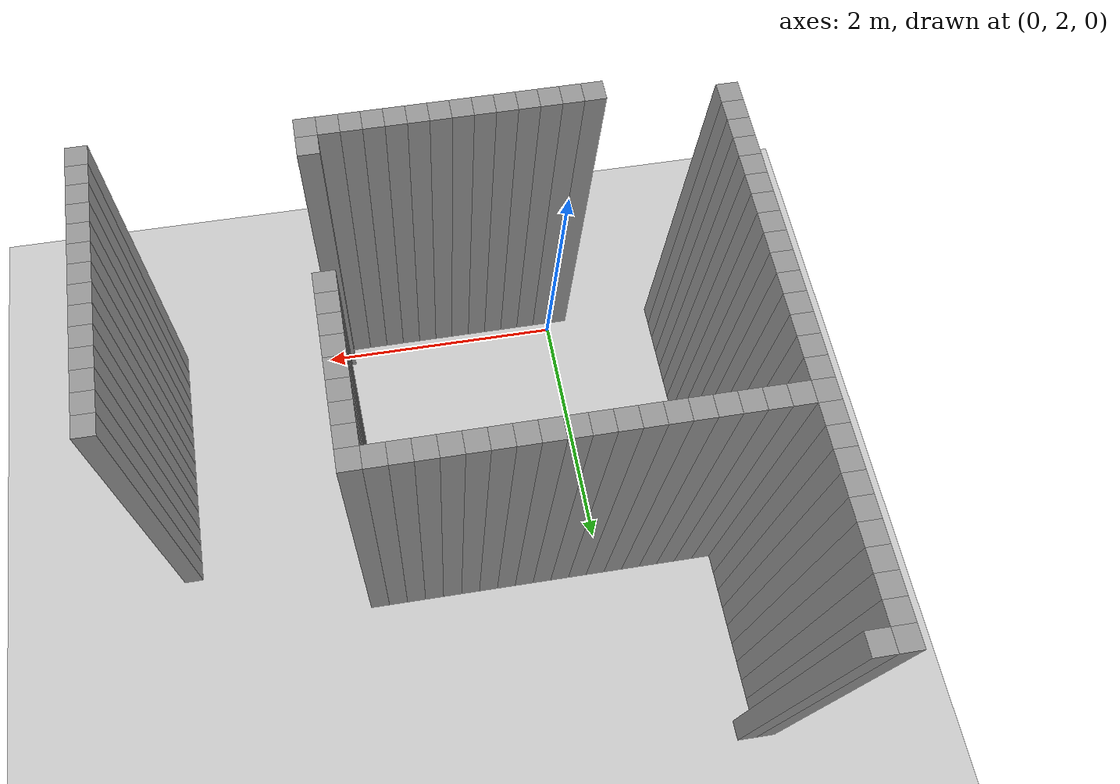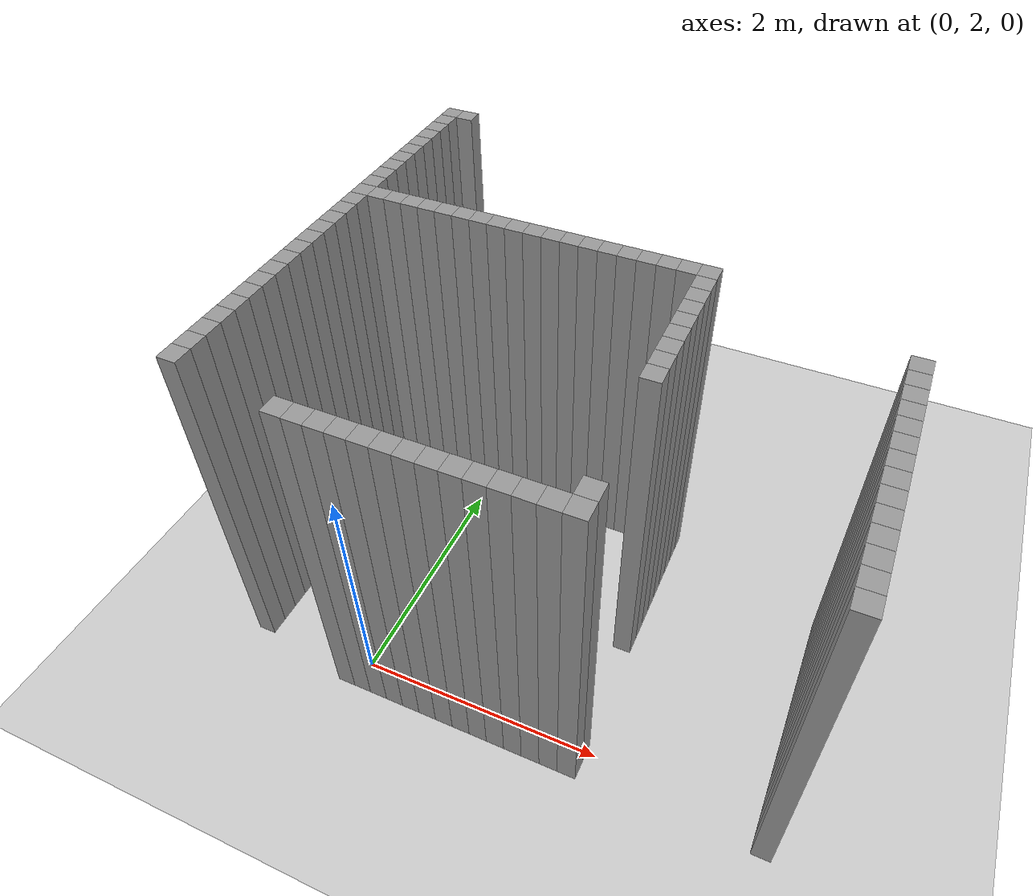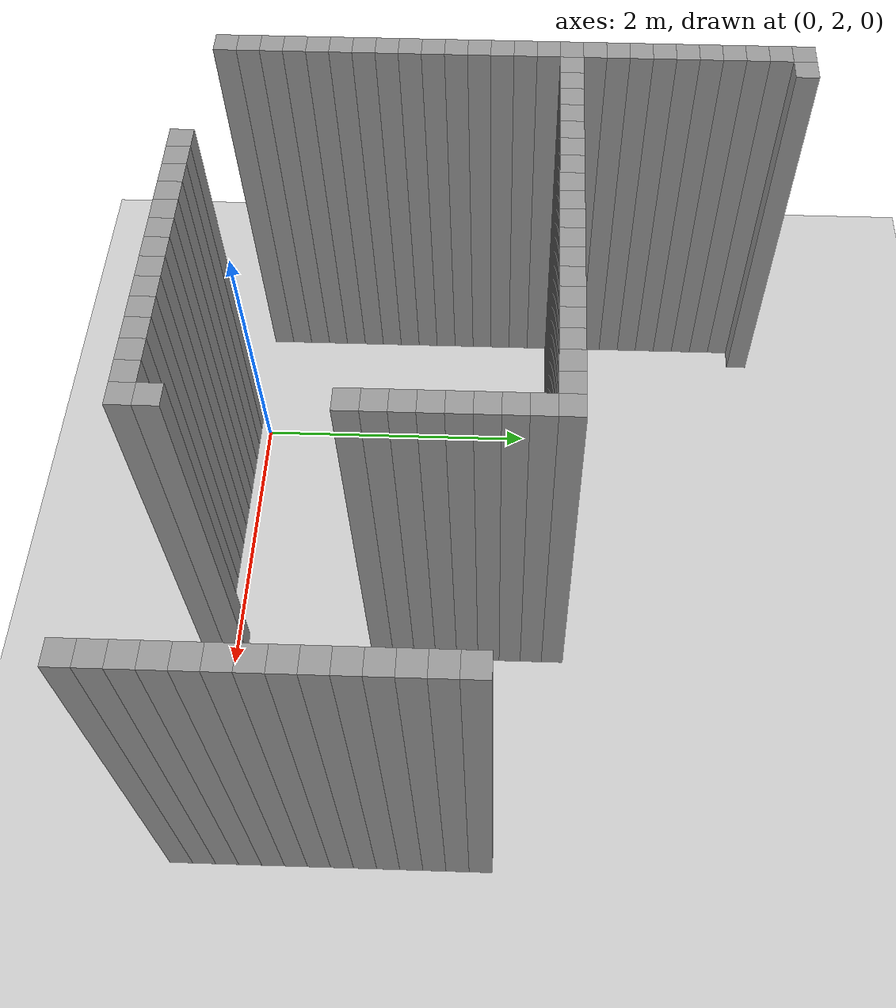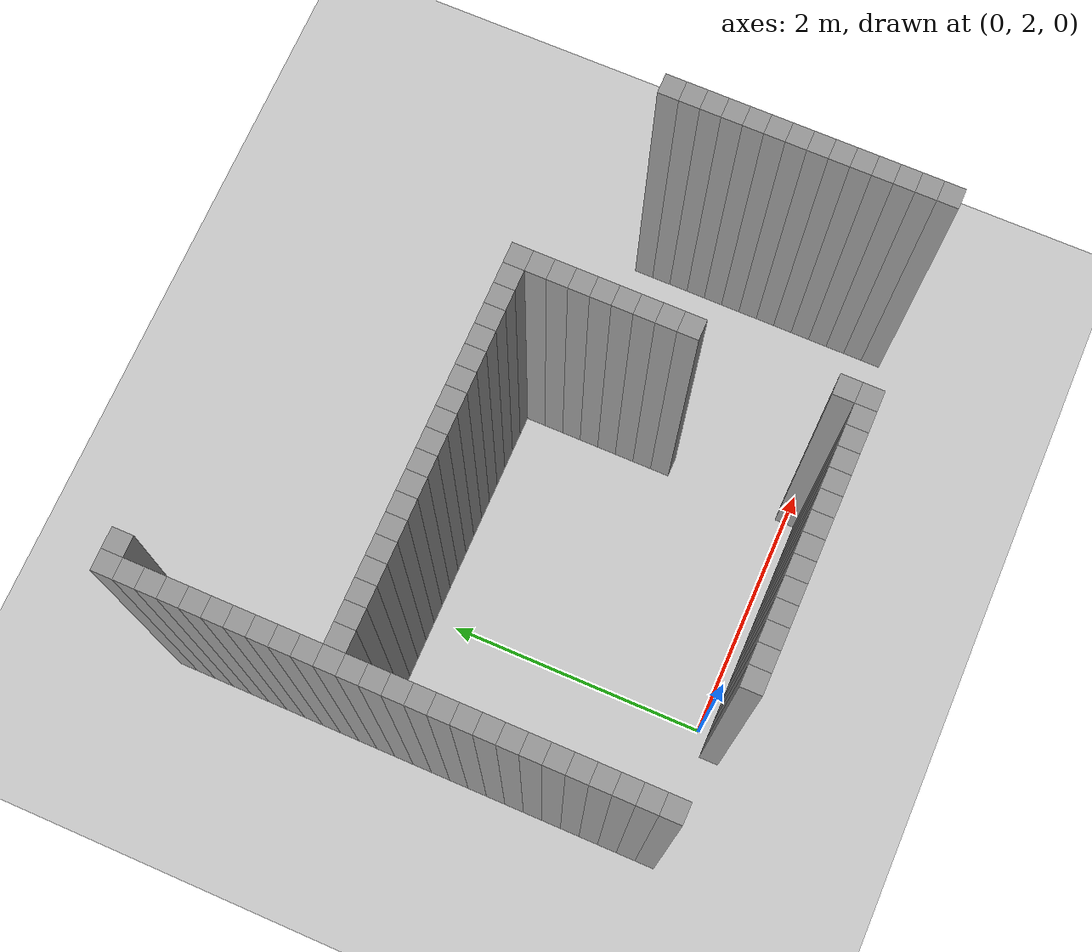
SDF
<sdf version="1.7">
 <world name="default">
  <model name="ground_plane">
   <static>1</static>
   <link name="link">
    <collision name="collision">
     <geometry><plane><normal>0 0 1</normal><size>100 100</size></plane></geometry>
     <surface>
      <contact><collide_bitmask>65535</collide_bitmask></contact>
      <friction><ode><mu>100</mu><mu2>50</mu2></ode></friction>
     </surface>
    </collision>
    <visual name="visual">
     <cast_shadows>0</cast_shadows>
     <geometry><plane><normal>0 0 1</normal><size>100 100</size></plane></geometry>
     <material>
      <script><uri>file://media/materials/scripts/gazebo.material</uri><name>Gazebo/Grey</name></script>
     </material>
    </visual>
   </link>
  </model>
  <model name="image45003">
   <pose>-1 -1 0 0 -0 0</pose>
   <link name="Wall_20">
    <collision name="Wall_20_Collision">
     <geometry><box><size>0.15 0.15 3</size></box></geometry>
     <pose>0 0 1.5 0 -0 0</pose>
    </collision>
    <visual name="Wall_20_Visual">
     <pose>0 0 1.5 0 -0 0</pose>
     <geometry><box><size>0.15 0.15 3</size></box></geometry>
     <material>
      <script><uri>file://media/materials/scripts/gazebo.material</uri><name>Gazebo/Grey</name></script>
      <ambient>1 1 1 1</ambient>
     </material>
     <meta><layer>0</layer></meta>
    </visual>
    <pose>0.0 3.0 0 0 -0 0</pose>
   </link>
   <link name="Wall_21">
    <collision name="Wall_21_Collision">
     <geometry><box><size>0.15 0.15 3</size></box></geometry>
     <pose>0 0 1.5 0 -0 0</pose>
    </collision>
    <visual name="Wall_21_Visual">
     <pose>0 0 1.5 0 -0 0</pose>
     <geometry><box><size>0.15 0.15 3</size></box></geometry>
     <material>
      <script><uri>file://media/materials/scripts/gazebo.material</uri><name>Gazebo/Grey</name></script>
      <ambient>1 1 1 1</ambient>
     </material>
     <meta><layer>0</layer></meta>
    </visual>
    <pose>0.0 3.15 0 0 -0 0</pose>
   </link>
   <link name="Wall_22">
    <collision name="Wall_22_Collision">
     <geometry><box><size>0.15 0.15 3</size></box></geometry>
     <pose>0 0 1.5 0 -0 0</pose>
    </collision>
    <visual name="Wall_22_Visual">
     <pose>0 0 1.5 0 -0 0</pose>
     <geometry><box><size>0.15 0.15 3</size></box></geometry>
     <material>
      <script><uri>file://media/materials/scripts/gazebo.material</uri><name>Gazebo/Grey</name></script>
      <ambient>1 1 1 1</ambient>
     </material>
     <meta><layer>0</layer></meta>
    </visual>
    <pose>0.0 3.3 0 0 -0 0</pose>
   </link>
   <link name="Wall_23">
    <collision name="Wall_23_Collision">
     <geometry><box><size>0.15 0.15 3</size></box></geometry>
     <pose>0 0 1.5 0 -0 0</pose>
    </collision>
    <visual name="Wall_23_Visual">
     <pose>0 0 1.5 0 -0 0</pose>
     <geometry><box><size>0.15 0.15 3</size></box></geometry>
     <material>
      <script><uri>file://media/materials/scripts/gazebo.material</uri><name>Gazebo/Grey</name></script>
      <ambient>1 1 1 1</ambient>
     </material>
     <meta><layer>0</layer></meta>
    </visual>
    <pose>0.0 3.4499999999999997 0 0 -0 0</pose>
   </link>
   <link name="Wall_24">
    <collision name="Wall_24_Collision">
     <geometry><box><size>0.15 0.15 3</size></box></geometry>
     <pose>0 0 1.5 0 -0 0</pose>
    </collision>
    <visual name="Wall_24_Visual">
     <pose>0 0 1.5 0 -0 0</pose>
     <geometry><box><size>0.15 0.15 3</size></box></geometry>
     <material>
      <script><uri>file://media/materials/scripts/gazebo.material</uri><name>Gazebo/Grey</name></script>
      <ambient>1 1 1 1</ambient>
     </material>
     <meta><layer>0</layer></meta>
    </visual>
    <pose>0.0 3.5999999999999996 0 0 -0 0</pose>
   </link>
   <link name="Wall_25">
    <collision name="Wall_25_Collision">
     <geometry><box><size>0.15 0.15 3</size></box></geometry>
     <pose>0 0 1.5 0 -0 0</pose>
    </collision>
    <visual name="Wall_25_Visual">
     <pose>0 0 1.5 0 -0 0</pose>
     <geometry><box><size>0.15 0.15 3</size></box></geometry>
     <material>
      <script><uri>file://media/materials/scripts/gazebo.material</uri><name>Gazebo/Grey</name></script>
      <ambient>1 1 1 1</ambient>
     </material>
     <meta><layer>0</layer></meta>
    </visual>
    <pose>0.0 3.75 0 0 -0 0</pose>
   </link>
   <link name="Wall_26">
    <collision name="Wall_26_Collision">
     <geometry><box><size>0.15 0.15 3</size></box></geometry>
     <pose>0 0 1.5 0 -0 0</pose>
    </collision>
    <visual name="Wall_26_Visual">
     <pose>0 0 1.5 0 -0 0</pose>
     <geometry><box><size>0.15 0.15 3</size></box></geometry>
     <material>
      <script><uri>file://media/materials/scripts/gazebo.material</uri><name>Gazebo/Grey</name></script>
      <ambient>1 1 1 1</ambient>
     </material>
     <meta><layer>0</layer></meta>
    </visual>
    <pose>0.0 3.9 0 0 -0 0</pose>
   </link>
   <link name="Wall_27">
    <collision name="Wall_27_Collision">
     <geometry><box><size>0.15 0.15 3</size></box></geometry>
     <pose>0 0 1.5 0 -0 0</pose>
    </collision>
    <visual name="Wall_27_Visual">
     <pose>0 0 1.5 0 -0 0</pose>
     <geometry><box><size>0.15 0.15 3</size></box></geometry>
     <material>
      <script><uri>file://media/materials/scripts/gazebo.material</uri><name>Gazebo/Grey</name></script>
      <ambient>1 1 1 1</ambient>
     </material>
     <meta><layer>0</layer></meta>
    </visual>
    <pose>0.0 4.05 0 0 -0 0</pose>
   </link>
   <link name="Wall_28">
    <collision name="Wall_28_Collision">
     <geometry><box><size>0.15 0.15 3</size></box></geometry>
     <pose>0 0 1.5 0 -0 0</pose>
    </collision>
    <visual name="Wall_28_Visual">
     <pose>0 0 1.5 0 -0 0</pose>
     <geometry><box><size>0.15 0.15 3</size></box></geometry>
     <material>
      <script><uri>file://media/materials/scripts/gazebo.material</uri><name>Gazebo/Grey</name></script>
      <ambient>1 1 1 1</ambient>
     </material>
     <meta><layer>0</layer></meta>
    </visual>
    <pose>0.0 4.2 0 0 -0 0</pose>
   </link>
   <link name="Wall_29">
    <collision name="Wall_29_Collision">
     <geometry><box><size>0.15 0.15 3</size></box></geometry>
     <pose>0 0 1.5 0 -0 0</pose>
    </collision>
    <visual name="Wall_29_Visual">
     <pose>0 0 1.5 0 -0 0</pose>
     <geometry><box><size>0.15 0.15 3</size></box></geometry>
     <material>
      <script><uri>file://media/materials/scripts/gazebo.material</uri><name>Gazebo/Grey</name></script>
      <ambient>1 1 1 1</ambient>
     </material>
     <meta><layer>0</layer></meta>
    </visual>
    <pose>0.0 4.35 0 0 -0 0</pose>
   </link>
   <link name="Wall_30">
    <collision name="Wall_30_Collision">
     <geometry><box><size>0.15 0.15 3</size></box></geometry>
     <pose>0 0 1.5 0 -0 0</pose>
    </collision>
    <visual name="Wall_30_Visual">
     <pose>0 0 1.5 0 -0 0</pose>
     <geometry><box><size>0.15 0.15 3</size></box></geometry>
     <material>
      <script><uri>file://media/materials/scripts/gazebo.material</uri><name>Gazebo/Grey</name></script>
      <ambient>1 1 1 1</ambient>
     </material>
     <meta><layer>0</layer></meta>
    </visual>
    <pose>0.0 4.5 0 0 -0 0</pose>
   </link>
   <link name="Wall_31">
    <collision name="Wall_31_Collision">
     <geometry><box><size>0.15 0.15 3</size></box></geometry>
     <pose>0 0 1.5 0 -0 0</pose>
    </collision>
    <visual name="Wall_31_Visual">
     <pose>0 0 1.5 0 -0 0</pose>
     <geometry><box><size>0.15 0.15 3</size></box></geometry>
     <material>
      <script><uri>file://media/materials/scripts/gazebo.material</uri><name>Gazebo/Grey</name></script>
      <ambient>1 1 1 1</ambient>
     </material>
     <meta><layer>0</layer></meta>
    </visual>
    <pose>0.0 4.6499999999999995 0 0 -0 0</pose>
   </link>
   <link name="Wall_32">
    <collision name="Wall_32_Collision">
     <geometry><box><size>0.15 0.15 3</size></box></geometry>
     <pose>0 0 1.5 0 -0 0</pose>
    </collision>
    <visual name="Wall_32_Visual">
     <pose>0 0 1.5 0 -0 0</pose>
     <geometry><box><size>0.15 0.15 3</size></box></geometry>
     <material>
      <script><uri>file://media/materials/scripts/gazebo.material</uri><name>Gazebo/Grey</name></script>
      <ambient>1 1 1 1</ambient>
     </material>
     <meta><layer>0</layer></meta>
    </visual>
    <pose>0.0 4.8 0 0 -0 0</pose>
   </link>
   <link name="Wall_33">
    <collision name="Wall_33_Collision">
     <geometry><box><size>0.15 0.15 3</size></box></geometry>
     <pose>0 0 1.5 0 -0 0</pose>
    </collision>
    <visual name="Wall_33_Visual">
     <pose>0 0 1.5 0 -0 0</pose>
     <geometry><box><size>0.15 0.15 3</size></box></geometry>
     <material>
      <script><uri>file://media/materials/scripts/gazebo.material</uri><name>Gazebo/Grey</name></script>
      <ambient>1 1 1 1</ambient>
     </material>
     <meta><layer>0</layer></meta>
    </visual>
    <pose>0.0 4.95 0 0 -0 0</pose>
   </link>
   <link name="Wall_34">
    <collision name="Wall_34_Collision">
     <geometry><box><size>0.15 0.15 3</size></box></geometry>
     <pose>0 0 1.5 0 -0 0</pose>
    </collision>
    <visual name="Wall_34_Visual">
     <pose>0 0 1.5 0 -0 0</pose>
     <geometry><box><size>0.15 0.15 3</size></box></geometry>
     <material>
      <script><uri>file://media/materials/scripts/gazebo.material</uri><name>Gazebo/Grey</name></script>
      <ambient>1 1 1 1</ambient>
     </material>
     <meta><layer>0</layer></meta>
    </visual>
    <pose>0.0 5.1 0 0 -0 0</pose>
   </link>
   <link name="Wall_35">
    <collision name="Wall_35_Collision">
     <geometry><box><size>0.15 0.15 3</size></box></geometry>
     <pose>0 0 1.5 0 -0 0</pose>
    </collision>
    <visual name="Wall_35_Visual">
     <pose>0 0 1.5 0 -0 0</pose>
     <geometry><box><size>0.15 0.15 3</size></box></geometry>
     <material>
      <script><uri>file://media/materials/scripts/gazebo.material</uri><name>Gazebo/Grey</name></script>
      <ambient>1 1 1 1</ambient>
     </material>
     <meta><layer>0</layer></meta>
    </visual>
    <pose>0.0 5.25 0 0 -0 0</pose>
   </link>
   <link name="Wall_36">
    <collision name="Wall_36_Collision">
     <geometry><box><size>0.15 0.15 3</size></box></geometry>
     <pose>0 0 1.5 0 -0 0</pose>
    </collision>
    <visual name="Wall_36_Visual">
     <pose>0 0 1.5 0 -0 0</pose>
     <geometry><box><size>0.15 0.15 3</size></box></geometry>
     <material>
      <script><uri>file://media/materials/scripts/gazebo.material</uri><name>Gazebo/Grey</name></script>
      <ambient>1 1 1 1</ambient>
     </material>
     <meta><layer>0</layer></meta>
    </visual>
    <pose>0.0 5.3999999999999995 0 0 -0 0</pose>
   </link>
   <link name="Wall_37">
    <collision name="Wall_37_Collision">
     <geometry><box><size>0.15 0.15 3</size></box></geometry>
     <pose>0 0 1.5 0 -0 0</pose>
    </collision>
    <visual name="Wall_37_Visual">
     <pose>0 0 1.5 0 -0 0</pose>
     <geometry><box><size>0.15 0.15 3</size></box></geometry>
     <material>
      <script><uri>file://media/materials/scripts/gazebo.material</uri><name>Gazebo/Grey</name></script>
      <ambient>1 1 1 1</ambient>
     </material>
     <meta><layer>0</layer></meta>
    </visual>
    <pose>0.0 5.55 0 0 -0 0</pose>
   </link>
   <link name="Wall_38">
    <collision name="Wall_38_Collision">
     <geometry><box><size>0.15 0.15 3</size></box></geometry>
     <pose>0 0 1.5 0 -0 0</pose>
    </collision>
    <visual name="Wall_38_Visual">
     <pose>0 0 1.5 0 -0 0</pose>
     <geometry><box><size>0.15 0.15 3</size></box></geometry>
     <material>
      <script><uri>file://media/materials/scripts/gazebo.material</uri><name>Gazebo/Grey</name></script>
      <ambient>1 1 1 1</ambient>
     </material>
     <meta><layer>0</layer></meta>
    </visual>
    <pose>0.0 5.7 0 0 -0 0</pose>
   </link>
   <link name="Wall_39">
    <collision name="Wall_39_Collision">
     <geometry><box><size>0.15 0.15 3</size></box></geometry>
     <pose>0 0 1.5 0 -0 0</pose>
    </collision>
    <visual name="Wall_39_Visual">
     <pose>0 0 1.5 0 -0 0</pose>
     <geometry><box><size>0.15 0.15 3</size></box></geometry>
     <material>
      <script><uri>file://media/materials/scripts/gazebo.material</uri><name>Gazebo/Grey</name></script>
      <ambient>1 1 1 1</ambient>
     </material>
     <meta><layer>0</layer></meta>
    </visual>
    <pose>0.0 5.85 0 0 -0 0</pose>
   </link>
   <link name="Wall_40">
    <collision name="Wall_40_Collision">
     <geometry><box><size>0.15 0.15 3</size></box></geometry>
     <pose>0 0 1.5 0 -0 0</pose>
    </collision>
    <visual name="Wall_40_Visual">
     <pose>0 0 1.5 0 -0 0</pose>
     <geometry><box><size>0.15 0.15 3</size></box></geometry>
     <material>
      <script><uri>file://media/materials/scripts/gazebo.material</uri><name>Gazebo/Grey</name></script>
      <ambient>1 1 1 1</ambient>
     </material>
     <meta><layer>0</layer></meta>
    </visual>
    <pose>0.0 6.0 0 0 -0 0</pose>
   </link>
   <link name="Wall_41">
    <collision name="Wall_41_Collision">
     <geometry><box><size>0.15 0.15 3</size></box></geometry>
     <pose>0 0 1.5 0 -0 0</pose>
    </collision>
    <visual name="Wall_41_Visual">
     <pose>0 0 1.5 0 -0 0</pose>
     <geometry><box><size>0.15 0.15 3</size></box></geometry>
     <material>
      <script><uri>file://media/materials/scripts/gazebo.material</uri><name>Gazebo/Grey</name></script>
      <ambient>1 1 1 1</ambient>
     </material>
     <meta><layer>0</layer></meta>
    </visual>
    <pose>0.0 6.1499999999999995 0 0 -0 0</pose>
   </link>
   <link name="Wall_42">
    <collision name="Wall_42_Collision">
     <geometry><box><size>0.15 0.15 3</size></box></geometry>
     <pose>0 0 1.5 0 -0 0</pose>
    </collision>
    <visual name="Wall_42_Visual">
     <pose>0 0 1.5 0 -0 0</pose>
     <geometry><box><size>0.15 0.15 3</size></box></geometry>
     <material>
      <script><uri>file://media/materials/scripts/gazebo.material</uri><name>Gazebo/Grey</name></script>
      <ambient>1 1 1 1</ambient>
     </material>
     <meta><layer>0</layer></meta>
    </visual>
    <pose>0.0 6.3 0 0 -0 0</pose>
   </link>
   <link name="Wall_43">
    <collision name="Wall_43_Collision">
     <geometry><box><size>0.15 0.15 3</size></box></geometry>
     <pose>0 0 1.5 0 -0 0</pose>
    </collision>
    <visual name="Wall_43_Visual">
     <pose>0 0 1.5 0 -0 0</pose>
     <geometry><box><size>0.15 0.15 3</size></box></geometry>
     <material>
      <script><uri>file://media/materials/scripts/gazebo.material</uri><name>Gazebo/Grey</name></script>
      <ambient>1 1 1 1</ambient>
     </material>
     <meta><layer>0</layer></meta>
    </visual>
    <pose>0.0 6.45 0 0 -0 0</pose>
   </link>
   <link name="Wall_44">
    <collision name="Wall_44_Collision">
     <geometry><box><size>0.15 0.15 3</size></box></geometry>
     <pose>0 0 1.5 0 -0 0</pose>
    </collision>
    <visual name="Wall_44_Visual">
     <pose>0 0 1.5 0 -0 0</pose>
     <geometry><box><size>0.15 0.15 3</size></box></geometry>
     <material>
      <script><uri>file://media/materials/scripts/gazebo.material</uri><name>Gazebo/Grey</name></script>
      <ambient>1 1 1 1</ambient>
     </material>
     <meta><layer>0</layer></meta>
    </visual>
    <pose>0.0 6.6 0 0 -0 0</pose>
   </link>
   <link name="Wall_45">
    <collision name="Wall_45_Collision">
     <geometry><box><size>0.15 0.15 3</size></box></geometry>
     <pose>0 0 1.5 0 -0 0</pose>
    </collision>
    <visual name="Wall_45_Visual">
     <pose>0 0 1.5 0 -0 0</pose>
     <geometry><box><size>0.15 0.15 3</size></box></geometry>
     <material>
      <script><uri>file://media/materials/scripts/gazebo.material</uri><name>Gazebo/Grey</name></script>
      <ambient>1 1 1 1</ambient>
     </material>
     <meta><layer>0</layer></meta>
    </visual>
    <pose>0.0 6.75 0 0 -0 0</pose>
   </link>
   <link name="Wall_62">
    <collision name="Wall_62_Collision">
     <geometry><box><size>0.15 0.15 3</size></box></geometry>
     <pose>0 0 1.5 0 -0 0</pose>
    </collision>
    <visual name="Wall_62_Visual">
     <pose>0 0 1.5 0 -0 0</pose>
     <geometry><box><size>0.15 0.15 3</size></box></geometry>
     <material>
      <script><uri>file://media/materials/scripts/gazebo.material</uri><name>Gazebo/Grey</name></script>
      <ambient>1 1 1 1</ambient>
     </material>
     <meta><layer>0</layer></meta>
    </visual>
    <pose>0.15 5.25 0 0 -0 0</pose>
   </link>
   <link name="Wall_63">
    <collision name="Wall_63_Collision">
     <geometry><box><size>0.15 0.15 3</size></box></geometry>
     <pose>0 0 1.5 0 -0 0</pose>
    </collision>
    <visual name="Wall_63_Visual">
     <pose>0 0 1.5 0 -0 0</pose>
     <geometry><box><size>0.15 0.15 3</size></box></geometry>
     <material>
      <script><uri>file://media/materials/scripts/gazebo.material</uri><name>Gazebo/Grey</name></script>
      <ambient>1 1 1 1</ambient>
     </material>
     <meta><layer>0</layer></meta>
    </visual>
    <pose>0.15 6.75 0 0 -0 0</pose>
   </link>
   <link name="Wall_67">
    <collision name="Wall_67_Collision">
     <geometry><box><size>0.15 0.15 3</size></box></geometry>
     <pose>0 0 1.5 0 -0 0</pose>
    </collision>
    <visual name="Wall_67_Visual">
     <pose>0 0 1.5 0 -0 0</pose>
     <geometry><box><size>0.15 0.15 3</size></box></geometry>
     <material>
      <script><uri>file://media/materials/scripts/gazebo.material</uri><name>Gazebo/Grey</name></script>
      <ambient>1 1 1 1</ambient>
     </material>
     <meta><layer>0</layer></meta>
    </visual>
    <pose>0.3 5.25 0 0 -0 0</pose>
   </link>
   <link name="Wall_71">
    <collision name="Wall_71_Collision">
     <geometry><box><size>0.15 0.15 3</size></box></geometry>
     <pose>0 0 1.5 0 -0 0</pose>
    </collision>
    <visual name="Wall_71_Visual">
     <pose>0 0 1.5 0 -0 0</pose>
     <geometry><box><size>0.15 0.15 3</size></box></geometry>
     <material>
      <script><uri>file://media/materials/scripts/gazebo.material</uri><name>Gazebo/Grey</name></script>
      <ambient>1 1 1 1</ambient>
     </material>
     <meta><layer>0</layer></meta>
    </visual>
    <pose>0.44999999999999996 5.25 0 0 -0 0</pose>
   </link>
   <link name="Wall_75">
    <collision name="Wall_75_Collision">
     <geometry><box><size>0.15 0.15 3</size></box></geometry>
     <pose>0 0 1.5 0 -0 0</pose>
    </collision>
    <visual name="Wall_75_Visual">
     <pose>0 0 1.5 0 -0 0</pose>
     <geometry><box><size>0.15 0.15 3</size></box></geometry>
     <material>
      <script><uri>file://media/materials/scripts/gazebo.material</uri><name>Gazebo/Grey</name></script>
      <ambient>1 1 1 1</ambient>
     </material>
     <meta><layer>0</layer></meta>
    </visual>
    <pose>0.6 5.25 0 0 -0 0</pose>
   </link>
   <link name="Wall_79">
    <collision name="Wall_79_Collision">
     <geometry><box><size>0.15 0.15 3</size></box></geometry>
     <pose>0 0 1.5 0 -0 0</pose>
    </collision>
    <visual name="Wall_79_Visual">
     <pose>0 0 1.5 0 -0 0</pose>
     <geometry><box><size>0.15 0.15 3</size></box></geometry>
     <material>
      <script><uri>file://media/materials/scripts/gazebo.material</uri><name>Gazebo/Grey</name></script>
      <ambient>1 1 1 1</ambient>
     </material>
     <meta><layer>0</layer></meta>
    </visual>
    <pose>0.75 5.25 0 0 -0 0</pose>
   </link>
   <link name="Wall_82">
    <collision name="Wall_82_Collision">
     <geometry><box><size>0.15 0.15 3</size></box></geometry>
     <pose>0 0 1.5 0 -0 0</pose>
    </collision>
    <visual name="Wall_82_Visual">
     <pose>0 0 1.5 0 -0 0</pose>
     <geometry><box><size>0.15 0.15 3</size></box></geometry>
     <material>
      <script><uri>file://media/materials/scripts/gazebo.material</uri><name>Gazebo/Grey</name></script>
      <ambient>1 1 1 1</ambient>
     </material>
     <meta><layer>0</layer></meta>
    </visual>
    <pose>0.8999999999999999 2.85 0 0 -0 0</pose>
   </link>
   <link name="Wall_83">
    <collision name="Wall_83_Collision">
     <geometry><box><size>0.15 0.15 3</size></box></geometry>
     <pose>0 0 1.5 0 -0 0</pose>
    </collision>
    <visual name="Wall_83_Visual">
     <pose>0 0 1.5 0 -0 0</pose>
     <geometry><box><size>0.15 0.15 3</size></box></geometry>
     <material>
      <script><uri>file://media/materials/scripts/gazebo.material</uri><name>Gazebo/Grey</name></script>
      <ambient>1 1 1 1</ambient>
     </material>
     <meta><layer>0</layer></meta>
    </visual>
    <pose>0.8999999999999999 5.25 0 0 -0 0</pose>
   </link>
   <link name="Wall_86">
    <collision name="Wall_86_Collision">
     <geometry><box><size>0.15 0.15 3</size></box></geometry>
     <pose>0 0 1.5 0 -0 0</pose>
    </collision>
    <visual name="Wall_86_Visual">
     <pose>0 0 1.5 0 -0 0</pose>
     <geometry><box><size>0.15 0.15 3</size></box></geometry>
     <material>
      <script><uri>file://media/materials/scripts/gazebo.material</uri><name>Gazebo/Grey</name></script>
      <ambient>1 1 1 1</ambient>
     </material>
     <meta><layer>0</layer></meta>
    </visual>
    <pose>1.05 2.85 0 0 -0 0</pose>
   </link>
   <link name="Wall_87">
    <collision name="Wall_87_Collision">
     <geometry><box><size>0.15 0.15 3</size></box></geometry>
     <pose>0 0 1.5 0 -0 0</pose>
    </collision>
    <visual name="Wall_87_Visual">
     <pose>0 0 1.5 0 -0 0</pose>
     <geometry><box><size>0.15 0.15 3</size></box></geometry>
     <material>
      <script><uri>file://media/materials/scripts/gazebo.material</uri><name>Gazebo/Grey</name></script>
      <ambient>1 1 1 1</ambient>
     </material>
     <meta><layer>0</layer></meta>
    </visual>
    <pose>1.05 5.25 0 0 -0 0</pose>
   </link>
   <link name="Wall_90">
    <collision name="Wall_90_Collision">
     <geometry><box><size>0.15 0.15 3</size></box></geometry>
     <pose>0 0 1.5 0 -0 0</pose>
    </collision>
    <visual name="Wall_90_Visual">
     <pose>0 0 1.5 0 -0 0</pose>
     <geometry><box><size>0.15 0.15 3</size></box></geometry>
     <material>
      <script><uri>file://media/materials/scripts/gazebo.material</uri><name>Gazebo/Grey</name></script>
      <ambient>1 1 1 1</ambient>
     </material>
     <meta><layer>0</layer></meta>
    </visual>
    <pose>1.2 2.85 0 0 -0 0</pose>
   </link>
   <link name="Wall_91">
    <collision name="Wall_91_Collision">
     <geometry><box><size>0.15 0.15 3</size></box></geometry>
     <pose>0 0 1.5 0 -0 0</pose>
    </collision>
    <visual name="Wall_91_Visual">
     <pose>0 0 1.5 0 -0 0</pose>
     <geometry><box><size>0.15 0.15 3</size></box></geometry>
     <material>
      <script><uri>file://media/materials/scripts/gazebo.material</uri><name>Gazebo/Grey</name></script>
      <ambient>1 1 1 1</ambient>
     </material>
     <meta><layer>0</layer></meta>
    </visual>
    <pose>1.2 5.25 0 0 -0 0</pose>
   </link>
   <link name="Wall_96">
    <collision name="Wall_96_Collision">
     <geometry><box><size>0.15 0.15 3</size></box></geometry>
     <pose>0 0 1.5 0 -0 0</pose>
    </collision>
    <visual name="Wall_96_Visual">
     <pose>0 0 1.5 0 -0 0</pose>
     <geometry><box><size>0.15 0.15 3</size></box></geometry>
     <material>
      <script><uri>file://media/materials/scripts/gazebo.material</uri><name>Gazebo/Grey</name></script>
      <ambient>1 1 1 1</ambient>
     </material>
     <meta><layer>0</layer></meta>
    </visual>
    <pose>1.3499999999999999 2.85 0 0 -0 0</pose>
   </link>
   <link name="Wall_97">
    <collision name="Wall_97_Collision">
     <geometry><box><size>0.15 0.15 3</size></box></geometry>
     <pose>0 0 1.5 0 -0 0</pose>
    </collision>
    <visual name="Wall_97_Visual">
     <pose>0 0 1.5 0 -0 0</pose>
     <geometry><box><size>0.15 0.15 3</size></box></geometry>
     <material>
      <script><uri>file://media/materials/scripts/gazebo.material</uri><name>Gazebo/Grey</name></script>
      <ambient>1 1 1 1</ambient>
     </material>
     <meta><layer>0</layer></meta>
    </visual>
    <pose>1.3499999999999999 5.25 0 0 -0 0</pose>
   </link>
   <link name="Wall_102">
    <collision name="Wall_102_Collision">
     <geometry><box><size>0.15 0.15 3</size></box></geometry>
     <pose>0 0 1.5 0 -0 0</pose>
    </collision>
    <visual name="Wall_102_Visual">
     <pose>0 0 1.5 0 -0 0</pose>
     <geometry><box><size>0.15 0.15 3</size></box></geometry>
     <material>
      <script><uri>file://media/materials/scripts/gazebo.material</uri><name>Gazebo/Grey</name></script>
      <ambient>1 1 1 1</ambient>
     </material>
     <meta><layer>0</layer></meta>
    </visual>
    <pose>1.5 2.85 0 0 -0 0</pose>
   </link>
   <link name="Wall_103">
    <collision name="Wall_103_Collision">
     <geometry><box><size>0.15 0.15 3</size></box></geometry>
     <pose>0 0 1.5 0 -0 0</pose>
    </collision>
    <visual name="Wall_103_Visual">
     <pose>0 0 1.5 0 -0 0</pose>
     <geometry><box><size>0.15 0.15 3</size></box></geometry>
     <material>
      <script><uri>file://media/materials/scripts/gazebo.material</uri><name>Gazebo/Grey</name></script>
      <ambient>1 1 1 1</ambient>
     </material>
     <meta><layer>0</layer></meta>
    </visual>
    <pose>1.5 5.25 0 0 -0 0</pose>
   </link>
   <link name="Wall_108">
    <collision name="Wall_108_Collision">
     <geometry><box><size>0.15 0.15 3</size></box></geometry>
     <pose>0 0 1.5 0 -0 0</pose>
    </collision>
    <visual name="Wall_108_Visual">
     <pose>0 0 1.5 0 -0 0</pose>
     <geometry><box><size>0.15 0.15 3</size></box></geometry>
     <material>
      <script><uri>file://media/materials/scripts/gazebo.material</uri><name>Gazebo/Grey</name></script>
      <ambient>1 1 1 1</ambient>
     </material>
     <meta><layer>0</layer></meta>
    </visual>
    <pose>1.65 2.85 0 0 -0 0</pose>
   </link>
   <link name="Wall_109">
    <collision name="Wall_109_Collision">
     <geometry><box><size>0.15 0.15 3</size></box></geometry>
     <pose>0 0 1.5 0 -0 0</pose>
    </collision>
    <visual name="Wall_109_Visual">
     <pose>0 0 1.5 0 -0 0</pose>
     <geometry><box><size>0.15 0.15 3</size></box></geometry>
     <material>
      <script><uri>file://media/materials/scripts/gazebo.material</uri><name>Gazebo/Grey</name></script>
      <ambient>1 1 1 1</ambient>
     </material>
     <meta><layer>0</layer></meta>
    </visual>
    <pose>1.65 5.25 0 0 -0 0</pose>
   </link>
   <link name="Wall_114">
    <collision name="Wall_114_Collision">
     <geometry><box><size>0.15 0.15 3</size></box></geometry>
     <pose>0 0 1.5 0 -0 0</pose>
    </collision>
    <visual name="Wall_114_Visual">
     <pose>0 0 1.5 0 -0 0</pose>
     <geometry><box><size>0.15 0.15 3</size></box></geometry>
     <material>
      <script><uri>file://media/materials/scripts/gazebo.material</uri><name>Gazebo/Grey</name></script>
      <ambient>1 1 1 1</ambient>
     </material>
     <meta><layer>0</layer></meta>
    </visual>
    <pose>1.7999999999999998 2.85 0 0 -0 0</pose>
   </link>
   <link name="Wall_115">
    <collision name="Wall_115_Collision">
     <geometry><box><size>0.15 0.15 3</size></box></geometry>
     <pose>0 0 1.5 0 -0 0</pose>
    </collision>
    <visual name="Wall_115_Visual">
     <pose>0 0 1.5 0 -0 0</pose>
     <geometry><box><size>0.15 0.15 3</size></box></geometry>
     <material>
      <script><uri>file://media/materials/scripts/gazebo.material</uri><name>Gazebo/Grey</name></script>
      <ambient>1 1 1 1</ambient>
     </material>
     <meta><layer>0</layer></meta>
    </visual>
    <pose>1.7999999999999998 5.25 0 0 -0 0</pose>
   </link>
   <link name="Wall_128">
    <collision name="Wall_128_Collision">
     <geometry><box><size>0.15 0.15 3</size></box></geometry>
     <pose>0 0 1.5 0 -0 0</pose>
    </collision>
    <visual name="Wall_128_Visual">
     <pose>0 0 1.5 0 -0 0</pose>
     <geometry><box><size>0.15 0.15 3</size></box></geometry>
     <material>
      <script><uri>file://media/materials/scripts/gazebo.material</uri><name>Gazebo/Grey</name></script>
      <ambient>1 1 1 1</ambient>
     </material>
     <meta><layer>0</layer></meta>
    </visual>
    <pose>1.95 2.85 0 0 -0 0</pose>
   </link>
   <link name="Wall_129">
    <collision name="Wall_129_Collision">
     <geometry><box><size>0.15 0.15 3</size></box></geometry>
     <pose>0 0 1.5 0 -0 0</pose>
    </collision>
    <visual name="Wall_129_Visual">
     <pose>0 0 1.5 0 -0 0</pose>
     <geometry><box><size>0.15 0.15 3</size></box></geometry>
     <material>
      <script><uri>file://media/materials/scripts/gazebo.material</uri><name>Gazebo/Grey</name></script>
      <ambient>1 1 1 1</ambient>
     </material>
     <meta><layer>0</layer></meta>
    </visual>
    <pose>1.95 5.25 0 0 -0 0</pose>
   </link>
   <link name="Wall_147">
    <collision name="Wall_147_Collision">
     <geometry><box><size>0.15 0.15 3</size></box></geometry>
     <pose>0 0 1.5 0 -0 0</pose>
    </collision>
    <visual name="Wall_147_Visual">
     <pose>0 0 1.5 0 -0 0</pose>
     <geometry><box><size>0.15 0.15 3</size></box></geometry>
     <material>
      <script><uri>file://media/materials/scripts/gazebo.material</uri><name>Gazebo/Grey</name></script>
      <ambient>1 1 1 1</ambient>
     </material>
     <meta><layer>0</layer></meta>
    </visual>
    <pose>2.1 2.85 0 0 -0 0</pose>
   </link>
   <link name="Wall_148">
    <collision name="Wall_148_Collision">
     <geometry><box><size>0.15 0.15 3</size></box></geometry>
     <pose>0 0 1.5 0 -0 0</pose>
    </collision>
    <visual name="Wall_148_Visual">
     <pose>0 0 1.5 0 -0 0</pose>
     <geometry><box><size>0.15 0.15 3</size></box></geometry>
     <material>
      <script><uri>file://media/materials/scripts/gazebo.material</uri><name>Gazebo/Grey</name></script>
      <ambient>1 1 1 1</ambient>
     </material>
     <meta><layer>0</layer></meta>
    </visual>
    <pose>2.1 5.25 0 0 -0 0</pose>
   </link>
   <link name="Wall_153">
    <collision name="Wall_153_Collision">
     <geometry><box><size>0.15 0.15 3</size></box></geometry>
     <pose>0 0 1.5 0 -0 0</pose>
    </collision>
    <visual name="Wall_153_Visual">
     <pose>0 0 1.5 0 -0 0</pose>
     <geometry><box><size>0.15 0.15 3</size></box></geometry>
     <material>
      <script><uri>file://media/materials/scripts/gazebo.material</uri><name>Gazebo/Grey</name></script>
      <ambient>1 1 1 1</ambient>
     </material>
     <meta><layer>0</layer></meta>
    </visual>
    <pose>2.25 2.85 0 0 -0 0</pose>
   </link>
   <link name="Wall_154">
    <collision name="Wall_154_Collision">
     <geometry><box><size>0.15 0.15 3</size></box></geometry>
     <pose>0 0 1.5 0 -0 0</pose>
    </collision>
    <visual name="Wall_154_Visual">
     <pose>0 0 1.5 0 -0 0</pose>
     <geometry><box><size>0.15 0.15 3</size></box></geometry>
     <material>
      <script><uri>file://media/materials/scripts/gazebo.material</uri><name>Gazebo/Grey</name></script>
      <ambient>1 1 1 1</ambient>
     </material>
     <meta><layer>0</layer></meta>
    </visual>
    <pose>2.25 5.25 0 0 -0 0</pose>
   </link>
   <link name="Wall_159">
    <collision name="Wall_159_Collision">
     <geometry><box><size>0.15 0.15 3</size></box></geometry>
     <pose>0 0 1.5 0 -0 0</pose>
    </collision>
    <visual name="Wall_159_Visual">
     <pose>0 0 1.5 0 -0 0</pose>
     <geometry><box><size>0.15 0.15 3</size></box></geometry>
     <material>
      <script><uri>file://media/materials/scripts/gazebo.material</uri><name>Gazebo/Grey</name></script>
      <ambient>1 1 1 1</ambient>
     </material>
     <meta><layer>0</layer></meta>
    </visual>
    <pose>2.4 2.85 0 0 -0 0</pose>
   </link>
   <link name="Wall_160">
    <collision name="Wall_160_Collision">
     <geometry><box><size>0.15 0.15 3</size></box></geometry>
     <pose>0 0 1.5 0 -0 0</pose>
    </collision>
    <visual name="Wall_160_Visual">
     <pose>0 0 1.5 0 -0 0</pose>
     <geometry><box><size>0.15 0.15 3</size></box></geometry>
     <material>
      <script><uri>file://media/materials/scripts/gazebo.material</uri><name>Gazebo/Grey</name></script>
      <ambient>1 1 1 1</ambient>
     </material>
     <meta><layer>0</layer></meta>
    </visual>
    <pose>2.4 5.25 0 0 -0 0</pose>
   </link>
   <link name="Wall_164">
    <collision name="Wall_164_Collision">
     <geometry><box><size>0.15 0.15 3</size></box></geometry>
     <pose>0 0 1.5 0 -0 0</pose>
    </collision>
    <visual name="Wall_164_Visual">
     <pose>0 0 1.5 0 -0 0</pose>
     <geometry><box><size>0.15 0.15 3</size></box></geometry>
     <material>
      <script><uri>file://media/materials/scripts/gazebo.material</uri><name>Gazebo/Grey</name></script>
      <ambient>1 1 1 1</ambient>
     </material>
     <meta><layer>0</layer></meta>
    </visual>
    <pose>2.55 2.85 0 0 -0 0</pose>
   </link>
   <link name="Wall_165">
    <collision name="Wall_165_Collision">
     <geometry><box><size>0.15 0.15 3</size></box></geometry>
     <pose>0 0 1.5 0 -0 0</pose>
    </collision>
    <visual name="Wall_165_Visual">
     <pose>0 0 1.5 0 -0 0</pose>
     <geometry><box><size>0.15 0.15 3</size></box></geometry>
     <material>
      <script><uri>file://media/materials/scripts/gazebo.material</uri><name>Gazebo/Grey</name></script>
      <ambient>1 1 1 1</ambient>
     </material>
     <meta><layer>0</layer></meta>
    </visual>
    <pose>2.55 5.25 0 0 -0 0</pose>
   </link>
   <link name="Wall_169">
    <collision name="Wall_169_Collision">
     <geometry><box><size>0.15 0.15 3</size></box></geometry>
     <pose>0 0 1.5 0 -0 0</pose>
    </collision>
    <visual name="Wall_169_Visual">
     <pose>0 0 1.5 0 -0 0</pose>
     <geometry><box><size>0.15 0.15 3</size></box></geometry>
     <material>
      <script><uri>file://media/materials/scripts/gazebo.material</uri><name>Gazebo/Grey</name></script>
      <ambient>1 1 1 1</ambient>
     </material>
     <meta><layer>0</layer></meta>
    </visual>
    <pose>2.6999999999999997 2.85 0 0 -0 0</pose>
   </link>
   <link name="Wall_170">
    <collision name="Wall_170_Collision">
     <geometry><box><size>0.15 0.15 3</size></box></geometry>
     <pose>0 0 1.5 0 -0 0</pose>
    </collision>
    <visual name="Wall_170_Visual">
     <pose>0 0 1.5 0 -0 0</pose>
     <geometry><box><size>0.15 0.15 3</size></box></geometry>
     <material>
      <script><uri>file://media/materials/scripts/gazebo.material</uri><name>Gazebo/Grey</name></script>
      <ambient>1 1 1 1</ambient>
     </material>
     <meta><layer>0</layer></meta>
    </visual>
    <pose>2.6999999999999997 5.25 0 0 -0 0</pose>
   </link>
   <link name="Wall_174">
    <collision name="Wall_174_Collision">
     <geometry><box><size>0.15 0.15 3</size></box></geometry>
     <pose>0 0 1.5 0 -0 0</pose>
    </collision>
    <visual name="Wall_174_Visual">
     <pose>0 0 1.5 0 -0 0</pose>
     <geometry><box><size>0.15 0.15 3</size></box></geometry>
     <material>
      <script><uri>file://media/materials/scripts/gazebo.material</uri><name>Gazebo/Grey</name></script>
      <ambient>1 1 1 1</ambient>
     </material>
     <meta><layer>0</layer></meta>
    </visual>
    <pose>2.85 2.85 0 0 -0 0</pose>
   </link>
   <link name="Wall_175">
    <collision name="Wall_175_Collision">
     <geometry><box><size>0.15 0.15 3</size></box></geometry>
     <pose>0 0 1.5 0 -0 0</pose>
    </collision>
    <visual name="Wall_175_Visual">
     <pose>0 0 1.5 0 -0 0</pose>
     <geometry><box><size>0.15 0.15 3</size></box></geometry>
     <material>
      <script><uri>file://media/materials/scripts/gazebo.material</uri><name>Gazebo/Grey</name></script>
      <ambient>1 1 1 1</ambient>
     </material>
     <meta><layer>0</layer></meta>
    </visual>
    <pose>2.85 3.0 0 0 -0 0</pose>
   </link>
   <link name="Wall_176">
    <collision name="Wall_176_Collision">
     <geometry><box><size>0.15 0.15 3</size></box></geometry>
     <pose>0 0 1.5 0 -0 0</pose>
    </collision>
    <visual name="Wall_176_Visual">
     <pose>0 0 1.5 0 -0 0</pose>
     <geometry><box><size>0.15 0.15 3</size></box></geometry>
     <material>
      <script><uri>file://media/materials/scripts/gazebo.material</uri><name>Gazebo/Grey</name></script>
      <ambient>1 1 1 1</ambient>
     </material>
     <meta><layer>0</layer></meta>
    </visual>
    <pose>2.85 4.05 0 0 -0 0</pose>
   </link>
   <link name="Wall_177">
    <collision name="Wall_177_Collision">
     <geometry><box><size>0.15 0.15 3</size></box></geometry>
     <pose>0 0 1.5 0 -0 0</pose>
    </collision>
    <visual name="Wall_177_Visual">
     <pose>0 0 1.5 0 -0 0</pose>
     <geometry><box><size>0.15 0.15 3</size></box></geometry>
     <material>
      <script><uri>file://media/materials/scripts/gazebo.material</uri><name>Gazebo/Grey</name></script>
      <ambient>1 1 1 1</ambient>
     </material>
     <meta><layer>0</layer></meta>
    </visual>
    <pose>2.85 4.2 0 0 -0 0</pose>
   </link>
   <link name="Wall_178">
    <collision name="Wall_178_Collision">
     <geometry><box><size>0.15 0.15 3</size></box></geometry>
     <pose>0 0 1.5 0 -0 0</pose>
    </collision>
    <visual name="Wall_178_Visual">
     <pose>0 0 1.5 0 -0 0</pose>
     <geometry><box><size>0.15 0.15 3</size></box></geometry>
     <material>
      <script><uri>file://media/materials/scripts/gazebo.material</uri><name>Gazebo/Grey</name></script>
      <ambient>1 1 1 1</ambient>
     </material>
     <meta><layer>0</layer></meta>
    </visual>
    <pose>2.85 4.35 0 0 -0 0</pose>
   </link>
   <link name="Wall_179">
    <collision name="Wall_179_Collision">
     <geometry><box><size>0.15 0.15 3</size></box></geometry>
     <pose>0 0 1.5 0 -0 0</pose>
    </collision>
    <visual name="Wall_179_Visual">
     <pose>0 0 1.5 0 -0 0</pose>
     <geometry><box><size>0.15 0.15 3</size></box></geometry>
     <material>
      <script><uri>file://media/materials/scripts/gazebo.material</uri><name>Gazebo/Grey</name></script>
      <ambient>1 1 1 1</ambient>
     </material>
     <meta><layer>0</layer></meta>
    </visual>
    <pose>2.85 4.5 0 0 -0 0</pose>
   </link>
   <link name="Wall_180">
    <collision name="Wall_180_Collision">
     <geometry><box><size>0.15 0.15 3</size></box></geometry>
     <pose>0 0 1.5 0 -0 0</pose>
    </collision>
    <visual name="Wall_180_Visual">
     <pose>0 0 1.5 0 -0 0</pose>
     <geometry><box><size>0.15 0.15 3</size></box></geometry>
     <material>
      <script><uri>file://media/materials/scripts/gazebo.material</uri><name>Gazebo/Grey</name></script>
      <ambient>1 1 1 1</ambient>
     </material>
     <meta><layer>0</layer></meta>
    </visual>
    <pose>2.85 4.6499999999999995 0 0 -0 0</pose>
   </link>
   <link name="Wall_181">
    <collision name="Wall_181_Collision">
     <geometry><box><size>0.15 0.15 3</size></box></geometry>
     <pose>0 0 1.5 0 -0 0</pose>
    </collision>
    <visual name="Wall_181_Visual">
     <pose>0 0 1.5 0 -0 0</pose>
     <geometry><box><size>0.15 0.15 3</size></box></geometry>
     <material>
      <script><uri>file://media/materials/scripts/gazebo.material</uri><name>Gazebo/Grey</name></script>
      <ambient>1 1 1 1</ambient>
     </material>
     <meta><layer>0</layer></meta>
    </visual>
    <pose>2.85 4.8 0 0 -0 0</pose>
   </link>
   <link name="Wall_182">
    <collision name="Wall_182_Collision">
     <geometry><box><size>0.15 0.15 3</size></box></geometry>
     <pose>0 0 1.5 0 -0 0</pose>
    </collision>
    <visual name="Wall_182_Visual">
     <pose>0 0 1.5 0 -0 0</pose>
     <geometry><box><size>0.15 0.15 3</size></box></geometry>
     <material>
      <script><uri>file://media/materials/scripts/gazebo.material</uri><name>Gazebo/Grey</name></script>
      <ambient>1 1 1 1</ambient>
     </material>
     <meta><layer>0</layer></meta>
    </visual>
    <pose>2.85 4.95 0 0 -0 0</pose>
   </link>
   <link name="Wall_183">
    <collision name="Wall_183_Collision">
     <geometry><box><size>0.15 0.15 3</size></box></geometry>
     <pose>0 0 1.5 0 -0 0</pose>
    </collision>
    <visual name="Wall_183_Visual">
     <pose>0 0 1.5 0 -0 0</pose>
     <geometry><box><size>0.15 0.15 3</size></box></geometry>
     <material>
      <script><uri>file://media/materials/scripts/gazebo.material</uri><name>Gazebo/Grey</name></script>
      <ambient>1 1 1 1</ambient>
     </material>
     <meta><layer>0</layer></meta>
    </visual>
    <pose>2.85 5.1 0 0 -0 0</pose>
   </link>
   <link name="Wall_184">
    <collision name="Wall_184_Collision">
     <geometry><box><size>0.15 0.15 3</size></box></geometry>
     <pose>0 0 1.5 0 -0 0</pose>
    </collision>
    <visual name="Wall_184_Visual">
     <pose>0 0 1.5 0 -0 0</pose>
     <geometry><box><size>0.15 0.15 3</size></box></geometry>
     <material>
      <script><uri>file://media/materials/scripts/gazebo.material</uri><name>Gazebo/Grey</name></script>
      <ambient>1 1 1 1</ambient>
     </material>
     <meta><layer>0</layer></meta>
    </visual>
    <pose>2.85 5.25 0 0 -0 0</pose>
   </link>
   <link name="Wall_235">
    <collision name="Wall_235_Collision">
     <geometry><box><size>0.15 0.15 3</size></box></geometry>
     <pose>0 0 1.5 0 -0 0</pose>
    </collision>
    <visual name="Wall_235_Visual">
     <pose>0 0 1.5 0 -0 0</pose>
     <geometry><box><size>0.15 0.15 3</size></box></geometry>
     <material>
      <script><uri>file://media/materials/scripts/gazebo.material</uri><name>Gazebo/Grey</name></script>
      <ambient>1 1 1 1</ambient>
     </material>
     <meta><layer>0</layer></meta>
    </visual>
    <pose>4.35 2.85 0 0 -0 0</pose>
   </link>
   <link name="Wall_236">
    <collision name="Wall_236_Collision">
     <geometry><box><size>0.15 0.15 3</size></box></geometry>
     <pose>0 0 1.5 0 -0 0</pose>
    </collision>
    <visual name="Wall_236_Visual">
     <pose>0 0 1.5 0 -0 0</pose>
     <geometry><box><size>0.15 0.15 3</size></box></geometry>
     <material>
      <script><uri>file://media/materials/scripts/gazebo.material</uri><name>Gazebo/Grey</name></script>
      <ambient>1 1 1 1</ambient>
     </material>
     <meta><layer>0</layer></meta>
    </visual>
    <pose>4.35 3.0 0 0 -0 0</pose>
   </link>
   <link name="Wall_237">
    <collision name="Wall_237_Collision">
     <geometry><box><size>0.15 0.15 3</size></box></geometry>
     <pose>0 0 1.5 0 -0 0</pose>
    </collision>
    <visual name="Wall_237_Visual">
     <pose>0 0 1.5 0 -0 0</pose>
     <geometry><box><size>0.15 0.15 3</size></box></geometry>
     <material>
      <script><uri>file://media/materials/scripts/gazebo.material</uri><name>Gazebo/Grey</name></script>
      <ambient>1 1 1 1</ambient>
     </material>
     <meta><layer>0</layer></meta>
    </visual>
    <pose>4.35 3.15 0 0 -0 0</pose>
   </link>
   <link name="Wall_238">
    <collision name="Wall_238_Collision">
     <geometry><box><size>0.15 0.15 3</size></box></geometry>
     <pose>0 0 1.5 0 -0 0</pose>
    </collision>
    <visual name="Wall_238_Visual">
     <pose>0 0 1.5 0 -0 0</pose>
     <geometry><box><size>0.15 0.15 3</size></box></geometry>
     <material>
      <script><uri>file://media/materials/scripts/gazebo.material</uri><name>Gazebo/Grey</name></script>
      <ambient>1 1 1 1</ambient>
     </material>
     <meta><layer>0</layer></meta>
    </visual>
    <pose>4.35 3.3 0 0 -0 0</pose>
   </link>
   <link name="Wall_239">
    <collision name="Wall_239_Collision">
     <geometry><box><size>0.15 0.15 3</size></box></geometry>
     <pose>0 0 1.5 0 -0 0</pose>
    </collision>
    <visual name="Wall_239_Visual">
     <pose>0 0 1.5 0 -0 0</pose>
     <geometry><box><size>0.15 0.15 3</size></box></geometry>
     <material>
      <script><uri>file://media/materials/scripts/gazebo.material</uri><name>Gazebo/Grey</name></script>
      <ambient>1 1 1 1</ambient>
     </material>
     <meta><layer>0</layer></meta>
    </visual>
    <pose>4.35 3.4499999999999997 0 0 -0 0</pose>
   </link>
   <link name="Wall_240">
    <collision name="Wall_240_Collision">
     <geometry><box><size>0.15 0.15 3</size></box></geometry>
     <pose>0 0 1.5 0 -0 0</pose>
    </collision>
    <visual name="Wall_240_Visual">
     <pose>0 0 1.5 0 -0 0</pose>
     <geometry><box><size>0.15 0.15 3</size></box></geometry>
     <material>
      <script><uri>file://media/materials/scripts/gazebo.material</uri><name>Gazebo/Grey</name></script>
      <ambient>1 1 1 1</ambient>
     </material>
     <meta><layer>0</layer></meta>
    </visual>
    <pose>4.35 3.5999999999999996 0 0 -0 0</pose>
   </link>
   <link name="Wall_241">
    <collision name="Wall_241_Collision">
     <geometry><box><size>0.15 0.15 3</size></box></geometry>
     <pose>0 0 1.5 0 -0 0</pose>
    </collision>
    <visual name="Wall_241_Visual">
     <pose>0 0 1.5 0 -0 0</pose>
     <geometry><box><size>0.15 0.15 3</size></box></geometry>
     <material>
      <script><uri>file://media/materials/scripts/gazebo.material</uri><name>Gazebo/Grey</name></script>
      <ambient>1 1 1 1</ambient>
     </material>
     <meta><layer>0</layer></meta>
    </visual>
    <pose>4.35 3.75 0 0 -0 0</pose>
   </link>
   <link name="Wall_242">
    <collision name="Wall_242_Collision">
     <geometry><box><size>0.15 0.15 3</size></box></geometry>
     <pose>0 0 1.5 0 -0 0</pose>
    </collision>
    <visual name="Wall_242_Visual">
     <pose>0 0 1.5 0 -0 0</pose>
     <geometry><box><size>0.15 0.15 3</size></box></geometry>
     <material>
      <script><uri>file://media/materials/scripts/gazebo.material</uri><name>Gazebo/Grey</name></script>
      <ambient>1 1 1 1</ambient>
     </material>
     <meta><layer>0</layer></meta>
    </visual>
    <pose>4.35 3.9 0 0 -0 0</pose>
   </link>
   <link name="Wall_243">
    <collision name="Wall_243_Collision">
     <geometry><box><size>0.15 0.15 3</size></box></geometry>
     <pose>0 0 1.5 0 -0 0</pose>
    </collision>
    <visual name="Wall_243_Visual">
     <pose>0 0 1.5 0 -0 0</pose>
     <geometry><box><size>0.15 0.15 3</size></box></geometry>
     <material>
      <script><uri>file://media/materials/scripts/gazebo.material</uri><name>Gazebo/Grey</name></script>
      <ambient>1 1 1 1</ambient>
     </material>
     <meta><layer>0</layer></meta>
    </visual>
    <pose>4.35 4.05 0 0 -0 0</pose>
   </link>
   <link name="Wall_244">
    <collision name="Wall_244_Collision">
     <geometry><box><size>0.15 0.15 3</size></box></geometry>
     <pose>0 0 1.5 0 -0 0</pose>
    </collision>
    <visual name="Wall_244_Visual">
     <pose>0 0 1.5 0 -0 0</pose>
     <geometry><box><size>0.15 0.15 3</size></box></geometry>
     <material>
      <script><uri>file://media/materials/scripts/gazebo.material</uri><name>Gazebo/Grey</name></script>
      <ambient>1 1 1 1</ambient>
     </material>
     <meta><layer>0</layer></meta>
    </visual>
    <pose>4.35 4.2 0 0 -0 0</pose>
   </link>
   <link name="Wall_245">
    <collision name="Wall_245_Collision">
     <geometry><box><size>0.15 0.15 3</size></box></geometry>
     <pose>0 0 1.5 0 -0 0</pose>
    </collision>
    <visual name="Wall_245_Visual">
     <pose>0 0 1.5 0 -0 0</pose>
     <geometry><box><size>0.15 0.15 3</size></box></geometry>
     <material>
      <script><uri>file://media/materials/scripts/gazebo.material</uri><name>Gazebo/Grey</name></script>
      <ambient>1 1 1 1</ambient>
     </material>
     <meta><layer>0</layer></meta>
    </visual>
    <pose>4.35 4.35 0 0 -0 0</pose>
   </link>
   <link name="Wall_246">
    <collision name="Wall_246_Collision">
     <geometry><box><size>0.15 0.15 3</size></box></geometry>
     <pose>0 0 1.5 0 -0 0</pose>
    </collision>
    <visual name="Wall_246_Visual">
     <pose>0 0 1.5 0 -0 0</pose>
     <geometry><box><size>0.15 0.15 3</size></box></geometry>
     <material>
      <script><uri>file://media/materials/scripts/gazebo.material</uri><name>Gazebo/Grey</name></script>
      <ambient>1 1 1 1</ambient>
     </material>
     <meta><layer>0</layer></meta>
    </visual>
    <pose>4.35 4.5 0 0 -0 0</pose>
   </link>
   <link name="Wall_247">
    <collision name="Wall_247_Collision">
     <geometry><box><size>0.15 0.15 3</size></box></geometry>
     <pose>0 0 1.5 0 -0 0</pose>
    </collision>
    <visual name="Wall_247_Visual">
     <pose>0 0 1.5 0 -0 0</pose>
     <geometry><box><size>0.15 0.15 3</size></box></geometry>
     <material>
      <script><uri>file://media/materials/scripts/gazebo.material</uri><name>Gazebo/Grey</name></script>
      <ambient>1 1 1 1</ambient>
     </material>
     <meta><layer>0</layer></meta>
    </visual>
    <pose>4.35 4.6499999999999995 0 0 -0 0</pose>
   </link>
   <link name="Wall_248">
    <collision name="Wall_248_Collision">
     <geometry><box><size>0.15 0.15 3</size></box></geometry>
     <pose>0 0 1.5 0 -0 0</pose>
    </collision>
    <visual name="Wall_248_Visual">
     <pose>0 0 1.5 0 -0 0</pose>
     <geometry><box><size>0.15 0.15 3</size></box></geometry>
     <material>
      <script><uri>file://media/materials/scripts/gazebo.material</uri><name>Gazebo/Grey</name></script>
      <ambient>1 1 1 1</ambient>
     </material>
     <meta><layer>0</layer></meta>
    </visual>
    <pose>4.35 4.8 0 0 -0 0</pose>
   </link>
   <static>1</static>
  </model>
 </world>
</sdf>
